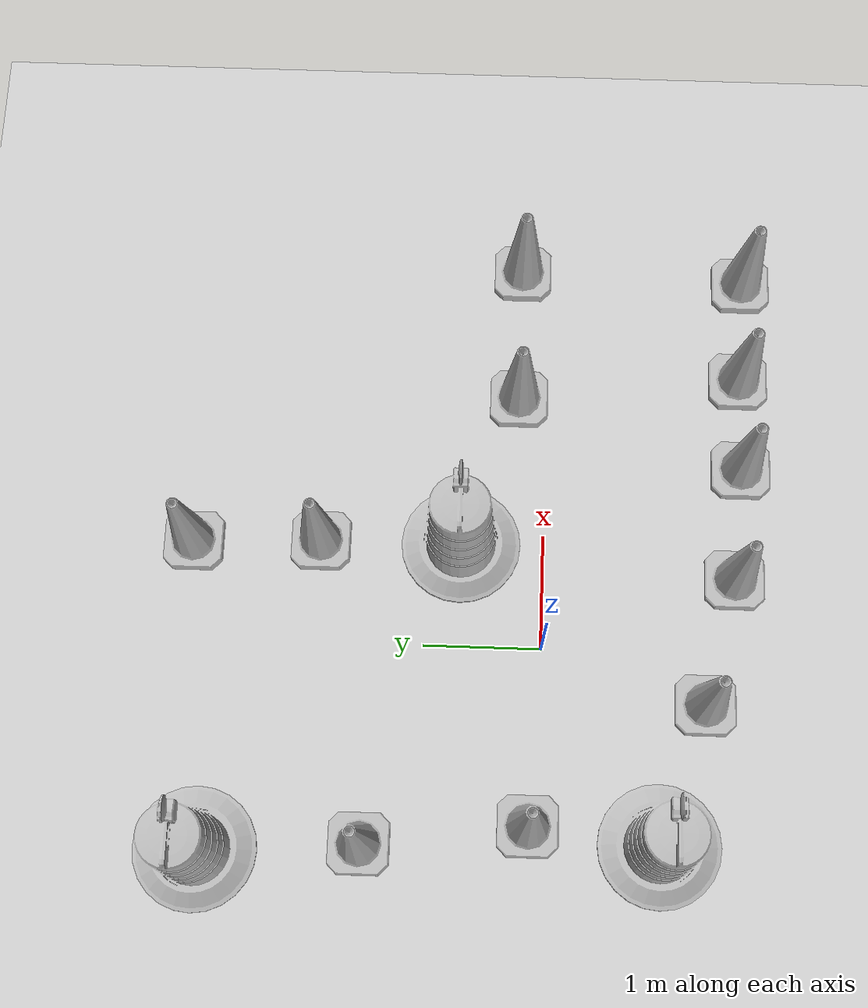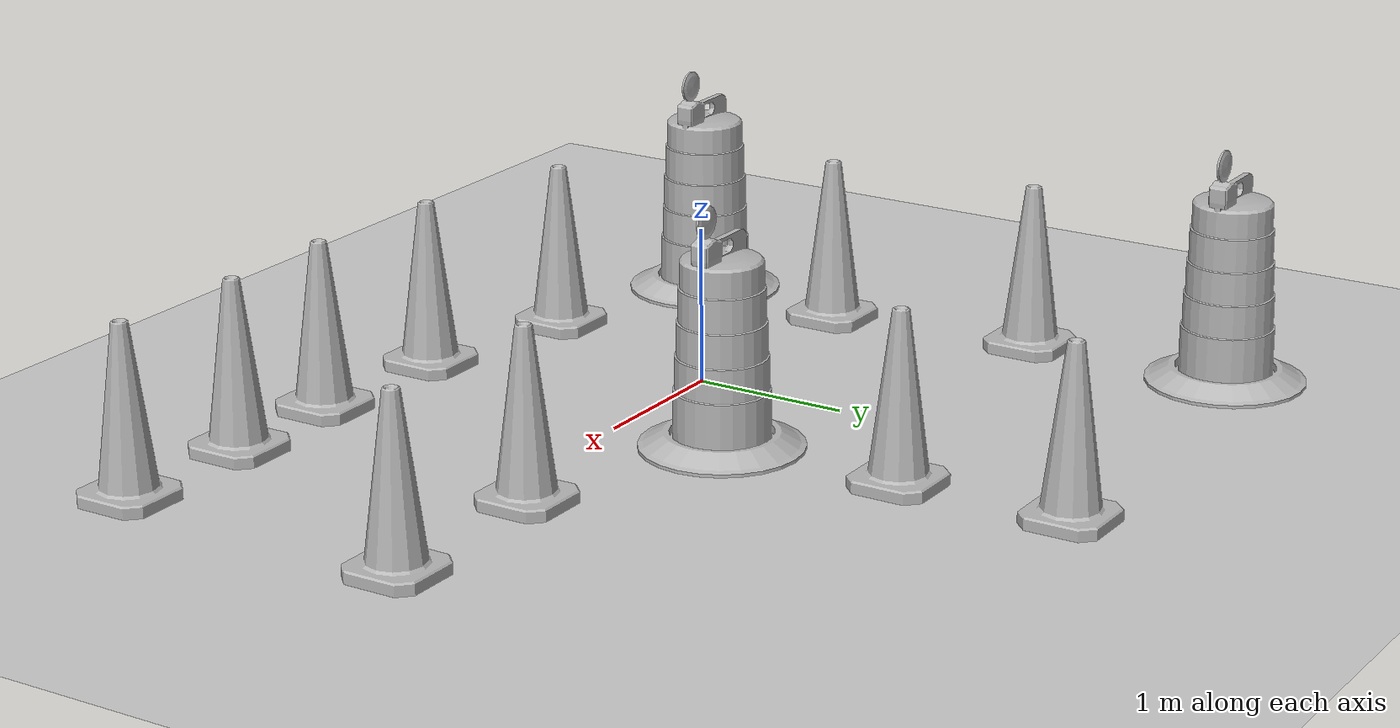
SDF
<sdf version="1.7">
 <world name="default">
  <light name="sun" type="directional">
   <pose>0 0 10 0 -0 0</pose>
   <diffuse>0.8 0.8 0.8 1</diffuse>
   <specular>0.2 0.2 0.2 1</specular>
   <attenuation>
    <range>1000</range>
    <constant>0.9</constant>
    <linear>0.01</linear>
    <quadratic>0.001</quadratic>
   </attenuation>
   <direction>-0.5 0.1 -0.9</direction>
   <spot><inner_angle>0</inner_angle><outer_angle>0</outer_angle><falloff>0</falloff></spot>
  </light>
  <model name="ground_plane">
   <static>1</static>
   <link name="link">
    <collision name="collision">
     <geometry><plane><normal>0 0 1</normal><size>100 100</size></plane></geometry>
     <surface>
      <contact><collide_bitmask>65535</collide_bitmask></contact>
      <friction><ode><mu>100</mu><mu2>50</mu2></ode></friction>
     </surface>
    </collision>
    <visual name="visual">
     <cast_shadows>0</cast_shadows>
     <geometry><plane><normal>0 0 1</normal><size>100 100</size></plane></geometry>
     <material>
      <script><uri>file://media/materials/scripts/gazebo.material</uri><name>Gazebo/Grey</name></script>
     </material>
    </visual>
   </link>
  </model>
  <gravity>0 0 -9.8</gravity>
  <magnetic_field>6e-06 2.3e-05 -4.2e-05</magnetic_field>
  <atmosphere type="adiabatic"/>
  <physics type="ode">
   <max_step_size>0.001</max_step_size>
   <real_time_factor>1</real_time_factor>
   <real_time_update_rate>1000</real_time_update_rate>
  </physics>
  <scene><ambient>0.4 0.4 0.4 1</ambient><background>0.7 0.7 0.7 1</background><shadows>1</shadows></scene>
  <spherical_coordinates>
   <surface_model>EARTH_WGS84</surface_model>
   <latitude_deg>0</latitude_deg>
   <longitude_deg>0</longitude_deg>
   <elevation>0</elevation>
   <heading_deg>0</heading_deg>
  </spherical_coordinates>
  <model name="Construction Barrel">
   <link name="link">
    <inertial>
     <pose>0 0 0.4 0 -0 0</pose>
     <mass>500</mass>
     <inertia><ixx>51.2096</ixx><iyy>51.2096</iyy><izz>25</izz><ixy>0</ixy><ixz>0</ixz><iyz>0</iyz></inertia>
    </inertial>
    <collision name="collision">
     <geometry><mesh><uri>model://construction_barrel/meshes/construction_barrel.dae</uri></mesh></geometry>
    </collision>
    <visual name="visual">
     <geometry><mesh><uri>model://construction_barrel/meshes/construction_barrel.dae</uri></mesh></geometry>
    </visual>
   </link>
   <pose>-1.61 -0.991266 -2e-06 -7e-06 -4e-06 -2.4e-05</pose>
  </model>
  <model name="Construction Barrel_0">
   <link name="link">
    <inertial>
     <pose>0 0 0.4 0 -0 0</pose>
     <mass>500</mass>
     <inertia><ixx>51.2096</ixx><iyy>51.2096</iyy><izz>25</izz><ixy>0</ixy><ixz>0</ixz><iyz>0</iyz></inertia>
    </inertial>
    <collision name="collision">
     <geometry><mesh><uri>model://construction_barrel/meshes/construction_barrel.dae</uri></mesh></geometry>
    </collision>
    <visual name="visual">
     <geometry><mesh><uri>model://construction_barrel/meshes/construction_barrel.dae</uri></mesh></geometry>
    </visual>
   </link>
   <pose>-1.74525 2.79705 -2e-06 -7e-06 -4e-06 -2.2e-05</pose>
  </model>
  <model name="Construction Cone">
   <link name="link">
    <collision name="collision">
     <geometry>
      <mesh><scale>10 10 10</scale><uri>model://construction_cone/meshes/construction_cone.dae</uri></mesh>
     </geometry>
    </collision>
    <visual name="visual">
     <geometry>
      <mesh><scale>10 10 10</scale><uri>model://construction_cone/meshes/construction_cone.dae</uri></mesh>
     </geometry>
    </visual>
    <inertial>
     <inertia><ixx>1</ixx><ixy>0</ixy><ixz>0</ixz><iyy>1</iyy><iyz>0</iyz><izz>1</izz></inertia>
     <mass>1</mass>
    </inertial>
   </link>
   <pose>-1.48118 0.087104 -0 0 -1e-06 0</pose>
  </model>
  <model name="Construction Cone_0">
   <link name="link">
    <collision name="collision">
     <geometry>
      <mesh><scale>10 10 10</scale><uri>model://construction_cone/meshes/construction_cone.dae</uri></mesh>
     </geometry>
    </collision>
    <visual name="visual">
     <geometry>
      <mesh><scale>10 10 10</scale><uri>model://construction_cone/meshes/construction_cone.dae</uri></mesh>
     </geometry>
    </visual>
    <inertial>
     <inertia><ixx>1</ixx><ixy>0</ixy><ixz>0</ixz><iyy>1</iyy><iyz>0</iyz><izz>1</izz></inertia>
     <mass>1</mass>
    </inertial>
   </link>
   <pose>-1.6636 1.46082 -0 0 -1e-06 0</pose>
  </model>
  <model name="Construction Cone_1">
   <link name="link">
    <collision name="collision">
     <geometry>
      <mesh><scale>10 10 10</scale><uri>model://construction_cone/meshes/construction_cone.dae</uri></mesh>
     </geometry>
    </collision>
    <visual name="visual">
     <geometry>
      <mesh><scale>10 10 10</scale><uri>model://construction_cone/meshes/construction_cone.dae</uri></mesh>
     </geometry>
    </visual>
    <inertial>
     <inertia><ixx>1</ixx><ixy>0</ixy><ixz>0</ixz><iyy>1</iyy><iyz>0</iyz><izz>1</izz></inertia>
     <mass>1</mass>
    </inertial>
   </link>
   <pose>-0.435555 -1.37668 -1e-05 -1e-06 0 0</pose>
  </model>
  <model name="Construction Cone_2">
   <link name="link">
    <collision name="collision">
     <geometry>
      <mesh><scale>10 10 10</scale><uri>model://construction_cone/meshes/construction_cone.dae</uri></mesh>
     </geometry>
    </collision>
    <visual name="visual">
     <geometry>
      <mesh><scale>10 10 10</scale><uri>model://construction_cone/meshes/construction_cone.dae</uri></mesh>
     </geometry>
    </visual>
    <inertial>
     <inertia><ixx>1</ixx><ixy>0</ixy><ixz>0</ixz><iyy>1</iyy><iyz>0</iyz><izz>1</izz></inertia>
     <mass>1</mass>
    </inertial>
   </link>
   <pose>0.654115 -1.63582 -0 0 -1e-06 0</pose>
  </model>
  <model name="Construction Cone_3">
   <link name="link">
    <collision name="collision">
     <geometry>
      <mesh><scale>10 10 10</scale><uri>model://construction_cone/meshes/construction_cone.dae</uri></mesh>
     </geometry>
    </collision>
    <visual name="visual">
     <geometry>
      <mesh><scale>10 10 10</scale><uri>model://construction_cone/meshes/construction_cone.dae</uri></mesh>
     </geometry>
    </visual>
    <inertial>
     <inertia><ixx>1</ixx><ixy>0</ixy><ixz>0</ixz><iyy>1</iyy><iyz>0</iyz><izz>1</izz></inertia>
     <mass>1</mass>
    </inertial>
   </link>
   <pose>1.64749 -1.704 -0 0 -1e-06 0</pose>
  </model>
  <model name="Construction Cone_4">
   <link name="link">
    <collision name="collision">
     <geometry>
      <mesh><scale>10 10 10</scale><uri>model://construction_cone/meshes/construction_cone.dae</uri></mesh>
     </geometry>
    </collision>
    <visual name="visual">
     <geometry>
      <mesh><scale>10 10 10</scale><uri>model://construction_cone/meshes/construction_cone.dae</uri></mesh>
     </geometry>
    </visual>
    <inertial>
     <inertia><ixx>1</ixx><ixy>0</ixy><ixz>0</ixz><iyy>1</iyy><iyz>0</iyz><izz>1</izz></inertia>
     <mass>1</mass>
    </inertial>
   </link>
   <pose>2.47897 -1.69215 -1e-06 2e-06 2e-06 0</pose>
  </model>
  <model name="Construction Barrel_1">
   <link name="link">
    <inertial>
     <pose>0 0 0.4 0 -0 0</pose>
     <mass>500</mass>
     <inertia><ixx>51.2096</ixx><iyy>51.2096</iyy><izz>25</izz><ixy>0</ixy><ixz>0</ixz><iyz>0</iyz></inertia>
    </inertial>
    <collision name="collision">
     <geometry><mesh><uri>model://construction_barrel/meshes/construction_barrel.dae</uri></mesh></geometry>
    </collision>
    <visual name="visual">
     <geometry><mesh><uri>model://construction_barrel/meshes/construction_barrel.dae</uri></mesh></geometry>
    </visual>
   </link>
   <pose>0.900047 0.710528 0 0 0 -1.3e-05</pose>
  </model>
  <model name="Construction Cone_5">
   <link name="link">
    <collision name="collision">
     <geometry>
      <mesh><scale>10 10 10</scale><uri>model://construction_cone/meshes/construction_cone.dae</uri></mesh>
     </geometry>
    </collision>
    <visual name="visual">
     <geometry>
      <mesh><scale>10 10 10</scale><uri>model://construction_cone/meshes/construction_cone.dae</uri></mesh>
     </geometry>
    </visual>
    <inertial>
     <inertia><ixx>1</ixx><ixy>0</ixy><ixz>0</ixz><iyy>1</iyy><iyz>0</iyz><izz>1</izz></inertia>
     <mass>1</mass>
    </inertial>
   </link>
   <pose>0.895521 1.91181 -0 0 -0 0</pose>
  </model>
  <model name="Construction Cone_6">
   <link name="link">
    <collision name="collision">
     <geometry>
      <mesh><scale>10 10 10</scale><uri>model://construction_cone/meshes/construction_cone.dae</uri></mesh>
     </geometry>
    </collision>
    <visual name="visual">
     <geometry>
      <mesh><scale>10 10 10</scale><uri>model://construction_cone/meshes/construction_cone.dae</uri></mesh>
     </geometry>
    </visual>
    <inertial>
     <inertia><ixx>1</ixx><ixy>0</ixy><ixz>0</ixz><iyy>1</iyy><iyz>0</iyz><izz>1</izz></inertia>
     <mass>1</mass>
    </inertial>
   </link>
   <pose>2.25416 0.239891 -0 0 -1e-06 0</pose>
  </model>
  <model name="Construction Cone_7">
   <link name="link">
    <collision name="collision">
     <geometry>
      <mesh><scale>10 10 10</scale><uri>model://construction_cone/meshes/construction_cone.dae</uri></mesh>
     </geometry>
    </collision>
    <visual name="visual">
     <geometry>
      <mesh><scale>10 10 10</scale><uri>model://construction_cone/meshes/construction_cone.dae</uri></mesh>
     </geometry>
    </visual>
    <inertial>
     <inertia><ixx>1</ixx><ixy>0</ixy><ixz>0</ixz><iyy>1</iyy><iyz>0</iyz><izz>1</izz></inertia>
     <mass>1</mass>
    </inertial>
   </link>
   <pose>0.862303 3.00435 -1e-05 -0 -0 -0</pose>
  </model>
  <model name="Construction Cone_8">
   <link name="link">
    <collision name="collision">
     <geometry>
      <mesh><scale>10 10 10</scale><uri>model://construction_cone/meshes/construction_cone.dae</uri></mesh>
     </geometry>
    </collision>
    <visual name="visual">
     <geometry>
      <mesh><scale>10 10 10</scale><uri>model://construction_cone/meshes/construction_cone.dae</uri></mesh>
     </geometry>
    </visual>
    <inertial>
     <inertia><ixx>1</ixx><ixy>0</ixy><ixz>0</ixz><iyy>1</iyy><iyz>0</iyz><izz>1</izz></inertia>
     <mass>1</mass>
    </inertial>
   </link>
   <pose>3.46788 0.231598 -0 0 -1e-06 0</pose>
  </model>
  <model name="Construction Cone_9">
   <link name="link">
    <collision name="collision">
     <geometry>
      <mesh><scale>10 10 10</scale><uri>model://construction_cone/meshes/construction_cone.dae</uri></mesh>
     </geometry>
    </collision>
    <visual name="visual">
     <geometry>
      <mesh><scale>10 10 10</scale><uri>model://construction_cone/meshes/construction_cone.dae</uri></mesh>
     </geometry>
    </visual>
    <inertial>
     <inertia><ixx>1</ixx><ixy>0</ixy><ixz>0</ixz><iyy>1</iyy><iyz>0</iyz><izz>1</izz></inertia>
     <mass>1</mass>
    </inertial>
   </link>
   <pose>3.41024 -1.72808 -0 0 -1e-06 0</pose>
  </model>
 </world>
</sdf>
